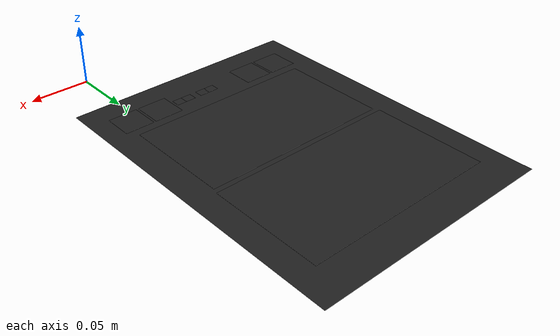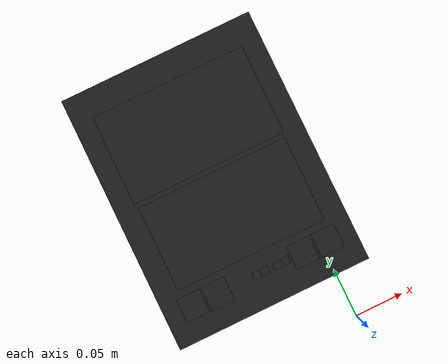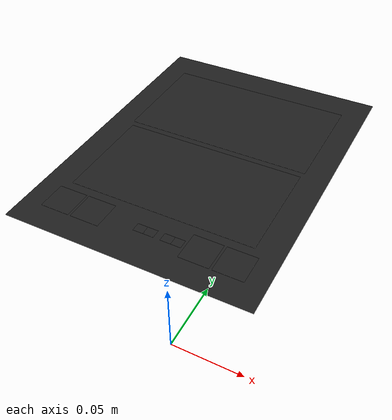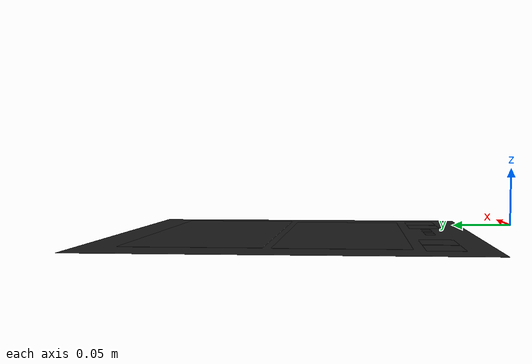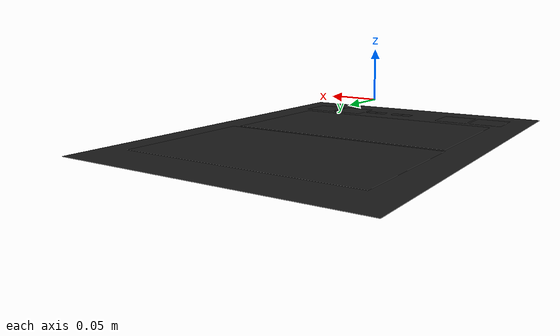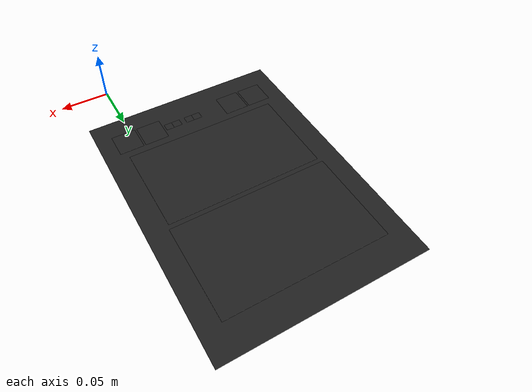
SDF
<?xml version="1.0" ?>
<sdf version="1.6">
  <model name="assembly_teaching_user_interface">
      <static>1</static>
      <pose>0 0 0 0 0 0</pose>
      <model name="frame">
        <static>1</static>
        <pose>-0.067 0.181 0 0 0 0</pose>
        <link name="frame_link">
          <visual name="frame_visual">
            <transparency>0</transparency>
            <cast_shadows>false</cast_shadows>
            <geometry>
              <plane>
                <size>0.206 0.272</size>
              </plane>
            </geometry>
            <material>
              <script>
                <uri>__default__</uri>
                <name>Gazebo/Black</name>
              </script>
            </material>
            <plugin name="frame_plugin" filename="libgazebo_ros_video.so">
              <robotNamespace>gazebo_projection_mapping/frame</robotNamespace>
              <height>1647</height>
              <width>2173</width>
              <defaultImagePath>file://images/assembly_frame.png</defaultImagePath>
              <useDoubleSideRenderingOnPlanes>false</useDoubleSideRenderingOnPlanes>
            </plugin>
          </visual>
          <gravity>0</gravity>
        </link>
      </model>

      <model name="text">
        <static>1</static>
        <pose>-0.0670 0.241 0.001 0 0 0</pose>
        <link name="text_link">
          <visual name="text_visual">
            <transparency>0</transparency>
            <cast_shadows>false</cast_shadows>
            <geometry>
              <plane>
                <size>0.164 0.095</size>
              </plane>
            </geometry>
            <material>
              <script>
                <uri>__default__</uri>
                <name>Gazebo/Black</name>
              </script>
            </material>
            <plugin name="text_plugin" filename="libgazebo_ros_video.so">
              <robotNamespace>gazebo_projection_mapping/text</robotNamespace>
              <height>1647</height>
              <width>2173</width>
              <defaultImagePath>file://images/assembly_text.png</defaultImagePath>
              <useDoubleSideRenderingOnPlanes>false</useDoubleSideRenderingOnPlanes>
            </plugin>
          </visual>
          <gravity>0</gravity>
        </link>
      </model>

      <model name="video">
        <static>1</static>
        <pose>-0.0669 0.1435 0.0005 0 0 0</pose>
        <link name="video_link">
          <visual name="video_visual">
            <transparency>0</transparency>
            <cast_shadows>false</cast_shadows>
            <geometry>
              <plane>
                <size>0.16 0.09</size>
              </plane>
            </geometry>
            <material>
              <script>
                <uri>__default__</uri>
                <name>Gazebo/Black</name>
              </script>
            </material>
            <plugin name="video_plugin" filename="libgazebo_ros_video.so">
              <robotNamespace>gazebo_projection_mapping/video</robotNamespace>
              <height>720</height>
              <width>1280</width>
              <defaultVideoPath>file://videos/mass_effect.mp4</defaultVideoPath>
              <videoFps>25</videoFps>
            </plugin>
          </visual>
          <gravity>0</gravity>
        </link>
      </model>

      <model name="first_button">
        <static>1</static>
        <pose>-0.14 0.0785 0.0005 0 0 0</pose>
        <link name="first_button_link">
          <visual name="first_button_visual">
            <transparency>0</transparency>
            <cast_shadows>false</cast_shadows>
            <geometry>
              <plane>
                <size>0.025 0.025</size>
              </plane>
            </geometry>
            <material>
              <script>
                <uri>__default__</uri>
                <name>Gazebo/Black</name>
              </script>
            </material>
            <plugin name="first_button_plugin" filename="libgazebo_ros_video.so">
              <robotNamespace>gazebo_projection_mapping/first_button</robotNamespace>
              <height>640</height>
              <width>640</width>
              <defaultImagePath>file://images/buttons/first.png</defaultImagePath>
              <useDoubleSideRenderingOnPlanes>false</useDoubleSideRenderingOnPlanes>
            </plugin>
          </visual>
          <gravity>0</gravity>
        </link>
      </model>

      <model name="previous_button">
        <static>1</static>
        <pose>-0.113 0.0785 0.0005 0 0 0</pose>
        <link name="previous_button_link">
          <visual name="previous_button_visual">
            <transparency>0</transparency>
            <cast_shadows>false</cast_shadows>
            <geometry>
              <plane>
                <size>0.025 0.025</size>
              </plane>
            </geometry>
            <material>
              <script>
                <uri>__default__</uri>
                <name>Gazebo/Black</name>
              </script>
            </material>
            <plugin name="first_button_plugin" filename="libgazebo_ros_video.so">
              <robotNamespace>gazebo_projection_mapping/previous_button</robotNamespace>
              <height>640</height>
              <width>640</width>
              <defaultImagePath>file://images/buttons/previous.png</defaultImagePath>
              <useDoubleSideRenderingOnPlanes>false</useDoubleSideRenderingOnPlanes>
            </plugin>
          </visual>
          <gravity>0</gravity>
        </link>
      </model>

      <model name="next_button">
        <static>1</static>
        <pose>-0.02 0.0785 0.0005 0 0 0</pose>
        <link name="next_button_link">
          <visual name="next_button_visual">
            <transparency>0</transparency>
            <cast_shadows>false</cast_shadows>
            <geometry>
              <plane>
                <size>0.025 0.025</size>
              </plane>
            </geometry>
            <material>
              <script>
                <uri>__default__</uri>
                <name>Gazebo/Black</name>
              </script>
            </material>
            <plugin name="next_button_plugin" filename="libgazebo_ros_video.so">
              <robotNamespace>gazebo_projection_mapping/next_button</robotNamespace>
              <height>640</height>
              <width>640</width>
              <defaultImagePath>file://images/buttons/next.png</defaultImagePath>
              <useDoubleSideRenderingOnPlanes>false</useDoubleSideRenderingOnPlanes>
            </plugin>
          </visual>
          <gravity>0</gravity>
        </link>
      </model>

      <model name="last_button">
        <static>1</static>
        <pose>0.007 0.0785 0.0005 0 0 0</pose>
        <link name="last_button_link">
          <visual name="last_button_visual">
            <transparency>0</transparency>
            <cast_shadows>false</cast_shadows>
            <geometry>
              <plane>
                <size>0.025 0.025</size>
              </plane>
            </geometry>
            <material>
              <script>
                <uri>__default__</uri>
                <name>Gazebo/Black</name>
              </script>
            </material>
            <plugin name="last_button_plugin" filename="libgazebo_ros_video.so">
              <robotNamespace>gazebo_projection_mapping/last_button</robotNamespace>
              <height>640</height>
              <width>640</width>
              <defaultImagePath>file://images/buttons/last.png</defaultImagePath>
              <useDoubleSideRenderingOnPlanes>false</useDoubleSideRenderingOnPlanes>
            </plugin>
          </visual>
          <gravity>0</gravity>
        </link>
      </model>

      <model name="first_number">
        <static>1</static>
        <pose>-0.0705 0.0785 0.0005 0 0 0</pose>
        <link name="first_number_link">
          <visual name="first_number_visual">
            <transparency>0</transparency>
            <cast_shadows>false</cast_shadows>
            <geometry>
              <plane>
                <size>0.00896 0.0077</size>
              </plane>
            </geometry>
            <material>
              <script>
                <uri>__default__</uri>
                <name>Gazebo/Black</name>
              </script>
            </material>
            <plugin name="first_number_plugin" filename="libgazebo_ros_video.so">
              <robotNamespace>gazebo_projection_mapping/first_number</robotNamespace>
              <height>55</height>
              <width>64</width>
              <defaultImagePath>file://images/numbers/0.png</defaultImagePath>
              <useDoubleSideRenderingOnPlanes>false</useDoubleSideRenderingOnPlanes>
            </plugin>
          </visual>
          <gravity>0</gravity>
        </link>
      </model>

      <model name="second_number">
        <static>1</static>
        <pose>-0.062 0.0785 0.0005 0 0 0</pose>
        <link name="second_number_link">
          <visual name="second_number_visual">
            <transparency>0</transparency>
            <cast_shadows>false</cast_shadows>
            <geometry>
              <plane>
                <size>0.00896 0.0077</size>
              </plane>
            </geometry>
            <material>
              <script>
                <uri>__default__</uri>
                <name>Gazebo/Black</name>
              </script>
            </material>
            <plugin name="second_number_plugin" filename="libgazebo_ros_video.so">
              <robotNamespace>gazebo_projection_mapping/second_number</robotNamespace>
              <height>55</height>
              <width>64</width>
              <defaultImagePath>file://images/numbers/0.png</defaultImagePath>
              <useDoubleSideRenderingOnPlanes>false</useDoubleSideRenderingOnPlanes>
            </plugin>
          </visual>
          <gravity>0</gravity>
        </link>
      </model>

      <model name="third_number">
        <static>1</static>
        <pose>-0.0475 0.0785 0.0005 0 0 0</pose>
        <link name="third_number_link">
          <visual name="third_number_visual">
            <transparency>0</transparency>
            <cast_shadows>false</cast_shadows>
            <geometry>
              <plane>
                <size>0.00896 0.0077</size>
              </plane>
            </geometry>
            <material>
              <script>
                <uri>__default__</uri>
                <name>Gazebo/Black</name>
              </script>
            </material>
            <plugin name="third_number_plugin" filename="libgazebo_ros_video.so">
              <robotNamespace>gazebo_projection_mapping/third_number</robotNamespace>
              <height>55</height>
              <width>64</width>
              <defaultImagePath>file://images/numbers/0.png</defaultImagePath>
              <useDoubleSideRenderingOnPlanes>false</useDoubleSideRenderingOnPlanes>
            </plugin>
          </visual>
          <gravity>0</gravity>
        </link>
      </model>

      <model name="fourth_number">
        <static>1</static>
        <pose>-0.0391 0.0785 0.0005 0 0 0</pose>
        <link name="fourth_number_link">
          <visual name="fourth_number_visual">
            <transparency>0</transparency>
            <cast_shadows>false</cast_shadows>
            <geometry>
              <plane>
                <size>0.00896 0.0077</size>
              </plane>
            </geometry>
            <material>
              <script>
                <uri>__default__</uri>
                <name>Gazebo/Black</name>
              </script>
            </material>
            <plugin name="fourth_number_plugin" filename="libgazebo_ros_video.so">
              <robotNamespace>gazebo_projection_mapping/fourth_number</robotNamespace>
              <height>55</height>
              <width>64</width>
              <defaultImagePath>file://images/numbers/0.png</defaultImagePath>
              <useDoubleSideRenderingOnPlanes>false</useDoubleSideRenderingOnPlanes>
            </plugin>
          </visual>
          <gravity>0</gravity>
        </link>
      </model>
    </model>
</sdf>
